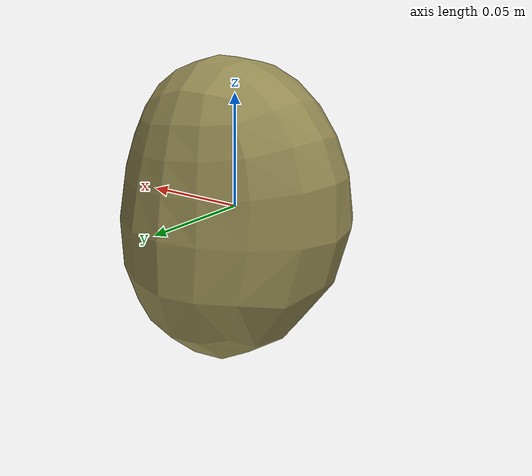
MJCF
<mujoco model="Potato_29">
  <compiler autolimits="true" boundmass="0.01" angle="radian"/>
  <default>
    <default class="/">
      <default class="__VISUAL_MJT__">
        <geom contype="0" conaffinity="0" group="0"/>
      </default>
      <default class="__STRUCTURAL_MJT__">
        <geom contype="8" conaffinity="15" group="4" friction="0.90000000000000002 0.90000000000000002 0.001" solref="0.025000000000000001 1" solimp="0.998 0.998 0.001"/>
      </default>
      <default class="__DYNAMIC_MJT__">
        <geom contype="1" conaffinity="15" group="4" friction="0.90000000000000002 0.90000000000000002 0.001" solref="0.025000000000000001 1" solimp="0.998 0.998 0.001"/>
      </default>
    </default>
  </default>
  <asset>
    <texture name="Potato3_Mat4" type="2d" file="Potato3_AlbedoTransparency.png"/>
    <material name="material_Potato3_Mat4" class="/" texture="Potato3_Mat4" specular="0.5" shininess="0.5" rgba="0.77941179999999999 0.75846409999999997 0.47567039999999999 1"/>
    <mesh name="Potato_29_potato_c9" class="/" file="Potato_29_potato_c9/Potato_29_potato_c9.obj" scale="1 1 1"/>
  </asset>
  <worldbody>
    <body name="Potato_29">
      <joint name="Potato_29_free" class="/" type="free" pos="0 0 0" axis="0 0 1" stiffness="0" range="0 0" armature="0" damping="0.10000000000000001" frictionloss="0"/>
      <body name="Potato_29_potato_c9" pos="0.00029 0.0061799999262392522 -0.00149" quat="1 0 0 0">
        <geom name="Potato_29_potato_c9" class="__VISUAL_MJT__" type="mesh" material="material_Potato3_Mat4" shellinertia="true" mesh="Potato_29_potato_c9"/>
        <geom name="Potato_29_PrimitiveCollider_0" class="__DYNAMIC_MJT__" type="capsule" size="0.055294238030910492 0.011632293462753296" rgba="0 1 0 1" pos="0.00028821080923080444 -0.00038397253956645727 0.0014942002017050982" quat="1.4751396609986736e-06 0.99999999999891198 0 0"/>
      </body>
    </body>
  </worldbody>
</mujoco>
